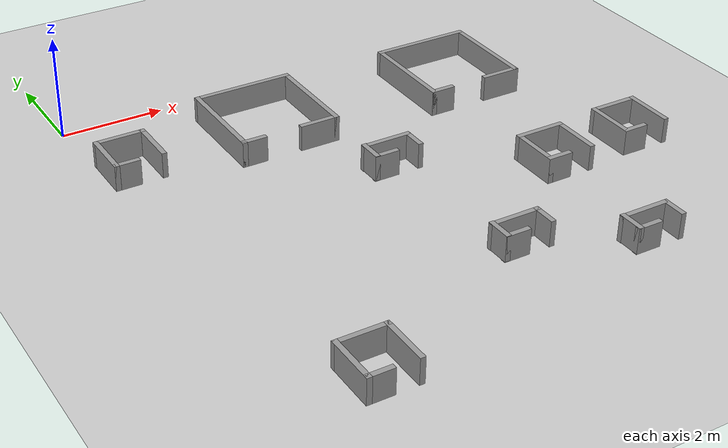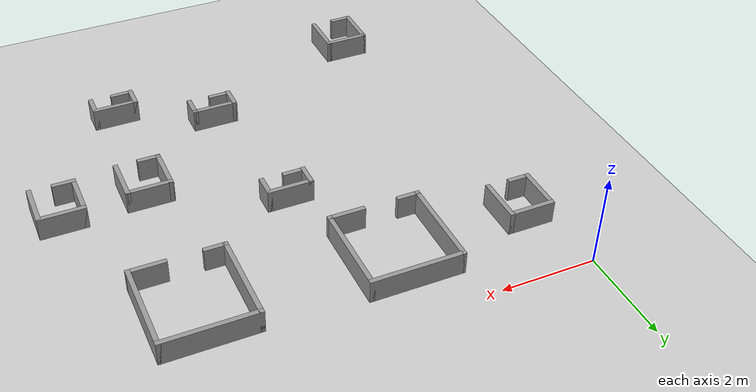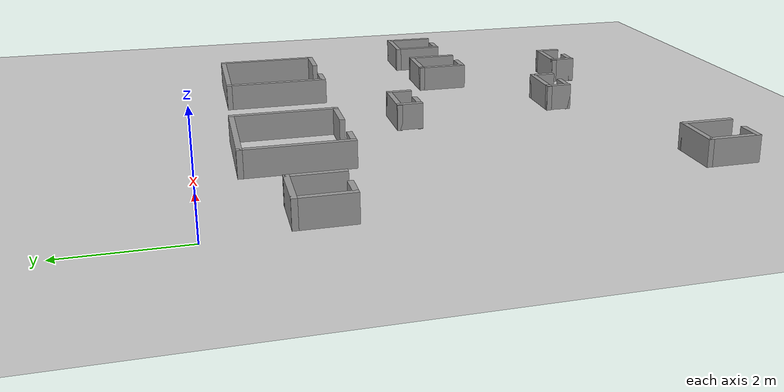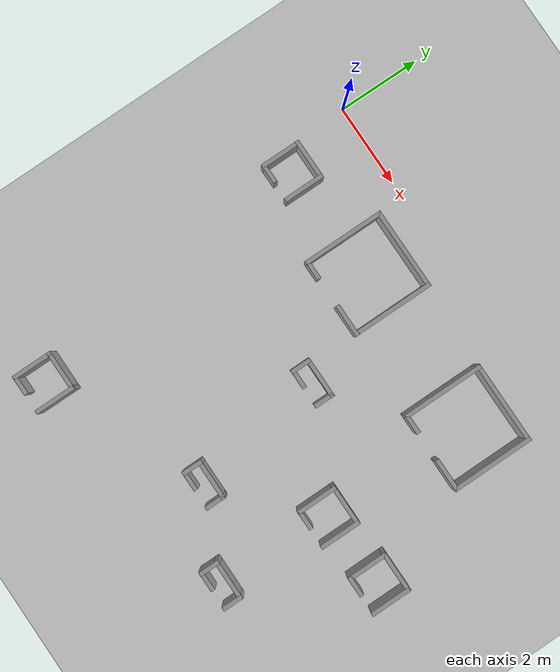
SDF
<sdf version="1.6">
 <world name="default">
  <model name="ground_plane">
   <static>1</static>
   <link name="link">
    <collision name="collision">
     <geometry><plane><normal>0 0 1</normal><size>20 20</size></plane></geometry>
     <surface>
      <contact><collide_bitmask>65535</collide_bitmask></contact>
      <friction><ode><mu>100</mu><mu2>50</mu2></ode></friction>
     </surface>
    </collision>
    <visual name="visual">
     <cast_shadows>0</cast_shadows>
     <geometry><plane><normal>0 0 1</normal><size>20 20</size></plane></geometry>
     <material>
      <script><uri>file://media/materials/scripts/gazebo.material</uri><name>Gazebo/Grey</name></script>
     </material>
    </visual>
   </link>
  </model>
  <model name="shape4">
   <pose>9.1 -5.3 0 0 -0 0</pose>
   <link name="Wall_14">
    <collision name="Wall_14_Collision">
     <geometry><box><size>1 0.1 0.5</size></box></geometry>
     <pose>0 0 0.25 0 -0 0</pose>
    </collision>
    <visual name="Wall_14_Visual">
     <pose>0 0 0.25 0 -0 0</pose>
     <geometry><box><size>1 0.1 0.5</size></box></geometry>
     <material>
      <script><uri>file://media/materials/scripts/gazebo.material</uri><name>Gazebo/Grey</name></script>
      <ambient>1 1 1 1</ambient>
     </material>
     <meta><layer>0</layer></meta>
    </visual>
    <pose>-0 0.45 0 0 -0 0</pose>
   </link>
   <link name="Wall_15">
    <collision name="Wall_15_Collision">
     <geometry><box><size>1 0.1 0.5</size></box></geometry>
     <pose>0 0 0.25 0 -0 0</pose>
    </collision>
    <visual name="Wall_15_Visual">
     <pose>0 0 0.25 0 -0 0</pose>
     <geometry><box><size>1 0.1 0.5</size></box></geometry>
     <material>
      <script><uri>file://media/materials/scripts/gazebo.material</uri><name>Gazebo/Grey</name></script>
      <ambient>1 1 1 1</ambient>
     </material>
     <meta><layer>0</layer></meta>
    </visual>
    <pose>0.45 -0 0 0 -0 -1.5708</pose>
   </link>
   <link name="Wall_17">
    <collision name="Wall_17_Collision">
     <geometry><box><size>1 0.1 0.5</size></box></geometry>
     <pose>0 0 0.25 0 -0 0</pose>
    </collision>
    <visual name="Wall_17_Visual">
     <pose>0 0 0.25 0 -0 0</pose>
     <geometry><box><size>1 0.1 0.5</size></box></geometry>
     <material>
      <script><uri>file://media/materials/scripts/gazebo.material</uri><name>Gazebo/Grey</name></script>
      <ambient>1 1 1 1</ambient>
     </material>
     <meta><layer>0</layer></meta>
    </visual>
    <pose>-0.45 -0 0 0 -0 -1.5708</pose>
   </link>
   <link name="Wall_18">
    <collision name="Wall_18_Collision">
     <geometry><box><size>0.5 0.1 0.5</size></box></geometry>
     <pose>0 0 0.25 0 -0 0</pose>
    </collision>
    <visual name="Wall_18_Visual">
     <pose>0 0 0.25 0 -0 0</pose>
     <geometry><box><size>0.5 0.1 0.5</size></box></geometry>
     <material>
      <script><uri>file://media/materials/scripts/gazebo.material</uri><name>Gazebo/Grey</name></script>
      <ambient>1 1 1 1</ambient>
     </material>
     <meta><layer>0</layer></meta>
    </visual>
    <pose>-0.25 -0.45 0 0 -0 0</pose>
   </link>
   <static>1</static>
  </model>
  <model name="shape0">
   <pose>4.7 -4.05 0 0 -0 0</pose>
   <link name="Wall_0">
    <pose>0 0.2 0 0 -0 0</pose>
    <inertial>
     <mass>1</mass>
     <inertia><ixx>1</ixx><ixy>0</ixy><ixz>0</ixz><iyy>1</iyy><iyz>0</iyz><izz>1</izz></inertia>
    </inertial>
    <visual name="Wall_0_Visual">
     <pose>0 0 0.25 0 -0 0</pose>
     <geometry><box><size>1 0.1 0.5</size></box></geometry>
     <material>
      <script><uri>file://media/materials/scripts/gazebo.material</uri><name>Gazebo/Grey</name></script>
      <ambient>1 1 1 1</ambient>
      <shader type="vertex"><normal_map>__default__</normal_map></shader>
      <diffuse>0.7 0.7 0.7 1</diffuse>
      <specular>0.01 0.01 0.01 1</specular>
      <emissive>0 0 0 1</emissive>
     </material>
     <meta><layer>0</layer></meta>
    </visual>
    <collision name="Wall_0_Collision">
     <pose>0 0 0.25 0 -0 0</pose>
     <geometry><box><size>1 0.1 0.5</size></box></geometry>
     <surface>
      <friction>
       <ode><mu>1</mu><mu2>1</mu2><fdir1>0 0 0</fdir1><slip1>0</slip1><slip2>0</slip2></ode>
       <torsional>
        <coefficient>1</coefficient>
        <patch_radius>0</patch_radius>
        <surface_radius>0</surface_radius>
        <use_patch_radius>1</use_patch_radius>
        <ode><slip>0</slip></ode>
       </torsional>
      </friction>
      <bounce><restitution_coefficient>0</restitution_coefficient><threshold>1e+06</threshold></bounce>
      <contact>
       <collide_without_contact>0</collide_without_contact>
       <collide_without_contact_bitmask>1</collide_without_contact_bitmask>
       <collide_bitmask>1</collide_bitmask>
       <ode>
        <soft_cfm>0</soft_cfm>
        <soft_erp>0.2</soft_erp>
        <kp>1e+13</kp>
        <kd>1</kd>
        <max_vel>0.01</max_vel>
        <min_depth>0</min_depth>
       </ode>
       <bullet>
        <split_impulse>1</split_impulse>
        <split_impulse_penetration_threshold>-0.01</split_impulse_penetration_threshold>
        <soft_cfm>0</soft_cfm>
        <soft_erp>0.2</soft_erp>
        <kp>1e+13</kp>
        <kd>1</kd>
       </bullet>
      </contact>
     </surface>
    </collision>
   </link>
   <link name="Wall_2">
    <pose>-0.45 0 0.01 0 0 -1.5708</pose>
    <inertial>
     <mass>1</mass>
     <inertia><ixx>1</ixx><ixy>0</ixy><ixz>0</ixz><iyy>1</iyy><iyz>0</iyz><izz>1</izz></inertia>
    </inertial>
    <visual name="Wall_2_Visual">
     <pose>0 0 0.25 0 -0 0</pose>
     <geometry><box><size>0.5 0.1 0.5</size></box></geometry>
     <material>
      <script><uri>file://media/materials/scripts/gazebo.material</uri><name>Gazebo/Grey</name></script>
      <ambient>1 1 1 1</ambient>
      <shader type="vertex"><normal_map>__default__</normal_map></shader>
      <diffuse>0.7 0.7 0.7 1</diffuse>
      <specular>0.01 0.01 0.01 1</specular>
      <emissive>0 0 0 1</emissive>
     </material>
     <meta><layer>0</layer></meta>
    </visual>
    <collision name="Wall_2_Collision">
     <pose>0 0 0.25 0 -0 0</pose>
     <geometry><box><size>0.5 0.1 0.5</size></box></geometry>
     <surface>
      <friction>
       <ode><mu>1</mu><mu2>1</mu2><fdir1>0 0 0</fdir1><slip1>0</slip1><slip2>0</slip2></ode>
       <torsional>
        <coefficient>1</coefficient>
        <patch_radius>0</patch_radius>
        <surface_radius>0</surface_radius>
        <use_patch_radius>1</use_patch_radius>
        <ode><slip>0</slip></ode>
       </torsional>
      </friction>
      <bounce><restitution_coefficient>0</restitution_coefficient><threshold>1e+06</threshold></bounce>
      <contact>
       <collide_without_contact>0</collide_without_contact>
       <collide_without_contact_bitmask>1</collide_without_contact_bitmask>
       <collide_bitmask>1</collide_bitmask>
       <ode>
        <soft_cfm>0</soft_cfm>
        <soft_erp>0.2</soft_erp>
        <kp>1e+13</kp>
        <kd>1</kd>
        <max_vel>0.01</max_vel>
        <min_depth>0</min_depth>
       </ode>
       <bullet>
        <split_impulse>1</split_impulse>
        <split_impulse_penetration_threshold>-0.01</split_impulse_penetration_threshold>
        <soft_cfm>0</soft_cfm>
        <soft_erp>0.2</soft_erp>
        <kp>1e+13</kp>
        <kd>1</kd>
       </bullet>
      </contact>
     </surface>
    </collision>
   </link>
   <link name="Wall_4">
    <pose>0.45 0 0 0 0 -1.5708</pose>
    <inertial>
     <mass>1</mass>
     <inertia><ixx>1</ixx><ixy>0</ixy><ixz>0</ixz><iyy>1</iyy><iyz>0</iyz><izz>1</izz></inertia>
    </inertial>
    <visual name="Wall_4_Visual">
     <pose>0 0 0.25 0 -0 0</pose>
     <geometry><box><size>0.5 0.1 0.5</size></box></geometry>
     <material>
      <script><uri>file://media/materials/scripts/gazebo.material</uri><name>Gazebo/Grey</name></script>
      <ambient>1 1 1 1</ambient>
      <shader type="vertex"><normal_map>__default__</normal_map></shader>
      <diffuse>0.7 0.7 0.7 1</diffuse>
      <specular>0.01 0.01 0.01 1</specular>
      <emissive>0 0 0 1</emissive>
     </material>
     <meta><layer>0</layer></meta>
    </visual>
    <collision name="Wall_4_Collision">
     <pose>0 0 0.25 0 -0 0</pose>
     <geometry><box><size>0.5 0.1 0.5</size></box></geometry>
     <surface>
      <friction>
       <ode><mu>1</mu><mu2>1</mu2><fdir1>0 0 0</fdir1><slip1>0</slip1><slip2>0</slip2></ode>
       <torsional>
        <coefficient>1</coefficient>
        <patch_radius>0</patch_radius>
        <surface_radius>0</surface_radius>
        <use_patch_radius>1</use_patch_radius>
        <ode><slip>0</slip></ode>
       </torsional>
      </friction>
      <bounce><restitution_coefficient>0</restitution_coefficient><threshold>1e+06</threshold></bounce>
      <contact>
       <collide_without_contact>0</collide_without_contact>
       <collide_without_contact_bitmask>1</collide_without_contact_bitmask>
       <collide_bitmask>1</collide_bitmask>
       <ode>
        <soft_cfm>0</soft_cfm>
        <soft_erp>0.2</soft_erp>
        <kp>1e+13</kp>
        <kd>1</kd>
        <max_vel>0.01</max_vel>
        <min_depth>0</min_depth>
       </ode>
       <bullet>
        <split_impulse>1</split_impulse>
        <split_impulse_penetration_threshold>-0.01</split_impulse_penetration_threshold>
        <soft_cfm>0</soft_cfm>
        <soft_erp>0.2</soft_erp>
        <kp>1e+13</kp>
        <kd>1</kd>
       </bullet>
      </contact>
     </surface>
    </collision>
   </link>
   <link name="Wall_7">
    <pose>-0.25 -0.2 0 0 -0 0</pose>
    <inertial>
     <mass>1</mass>
     <inertia><ixx>1</ixx><ixy>0</ixy><ixz>0</ixz><iyy>1</iyy><iyz>0</iyz><izz>1</izz></inertia>
    </inertial>
    <visual name="Wall_7_Visual">
     <pose>0 0 0.25 0 -0 0</pose>
     <geometry><box><size>0.5 0.1 0.5</size></box></geometry>
     <material>
      <script><uri>file://media/materials/scripts/gazebo.material</uri><name>Gazebo/Grey</name></script>
      <ambient>1 1 1 1</ambient>
      <shader type="vertex"><normal_map>__default__</normal_map></shader>
      <diffuse>0.7 0.7 0.7 1</diffuse>
      <specular>0.01 0.01 0.01 1</specular>
      <emissive>0 0 0 1</emissive>
     </material>
     <meta><layer>0</layer></meta>
    </visual>
    <collision name="Wall_7_Collision">
     <pose>0 0 0.25 0 -0 0</pose>
     <geometry><box><size>0.5 0.1 0.5</size></box></geometry>
     <surface>
      <friction>
       <ode><mu>1</mu><mu2>1</mu2><fdir1>0 0 0</fdir1><slip1>0</slip1><slip2>0</slip2></ode>
       <torsional>
        <coefficient>1</coefficient>
        <patch_radius>0</patch_radius>
        <surface_radius>0</surface_radius>
        <use_patch_radius>1</use_patch_radius>
        <ode><slip>0</slip></ode>
       </torsional>
      </friction>
      <bounce><restitution_coefficient>0</restitution_coefficient><threshold>1e+06</threshold></bounce>
      <contact>
       <collide_without_contact>0</collide_without_contact>
       <collide_without_contact_bitmask>1</collide_without_contact_bitmask>
       <collide_bitmask>1</collide_bitmask>
       <ode>
        <soft_cfm>0</soft_cfm>
        <soft_erp>0.2</soft_erp>
        <kp>1e+13</kp>
        <kd>1</kd>
        <max_vel>0.01</max_vel>
        <min_depth>0</min_depth>
       </ode>
       <bullet>
        <split_impulse>1</split_impulse>
        <split_impulse_penetration_threshold>-0.01</split_impulse_penetration_threshold>
        <soft_cfm>0</soft_cfm>
        <soft_erp>0.2</soft_erp>
        <kp>1e+13</kp>
        <kd>1</kd>
       </bullet>
      </contact>
     </surface>
    </collision>
   </link>
   <static>1</static>
  </model>
  <model name="shape0">
   <pose>7.2 -8.15 0 0 -0 0</pose>
   <link name="Wall_0">
    <pose>0 0.2 0 0 -0 0</pose>
    <inertial>
     <mass>1</mass>
     <inertia><ixx>1</ixx><ixy>0</ixy><ixz>0</ixz><iyy>1</iyy><iyz>0</iyz><izz>1</izz></inertia>
    </inertial>
    <visual name="Wall_0_Visual">
     <pose>0 0 0.25 0 -0 0</pose>
     <geometry><box><size>1 0.1 0.5</size></box></geometry>
     <material>
      <script><uri>file://media/materials/scripts/gazebo.material</uri><name>Gazebo/Grey</name></script>
      <ambient>1 1 1 1</ambient>
      <shader type="vertex"><normal_map>__default__</normal_map></shader>
      <diffuse>0.7 0.7 0.7 1</diffuse>
      <specular>0.01 0.01 0.01 1</specular>
      <emissive>0 0 0 1</emissive>
     </material>
     <meta><layer>0</layer></meta>
    </visual>
    <collision name="Wall_0_Collision">
     <pose>0 0 0.25 0 -0 0</pose>
     <geometry><box><size>1 0.1 0.5</size></box></geometry>
     <surface>
      <friction>
       <ode><mu>1</mu><mu2>1</mu2><fdir1>0 0 0</fdir1><slip1>0</slip1><slip2>0</slip2></ode>
       <torsional>
        <coefficient>1</coefficient>
        <patch_radius>0</patch_radius>
        <surface_radius>0</surface_radius>
        <use_patch_radius>1</use_patch_radius>
        <ode><slip>0</slip></ode>
       </torsional>
      </friction>
      <bounce><restitution_coefficient>0</restitution_coefficient><threshold>1e+06</threshold></bounce>
      <contact>
       <collide_without_contact>0</collide_without_contact>
       <collide_without_contact_bitmask>1</collide_without_contact_bitmask>
       <collide_bitmask>1</collide_bitmask>
       <ode>
        <soft_cfm>0</soft_cfm>
        <soft_erp>0.2</soft_erp>
        <kp>1e+13</kp>
        <kd>1</kd>
        <max_vel>0.01</max_vel>
        <min_depth>0</min_depth>
       </ode>
       <bullet>
        <split_impulse>1</split_impulse>
        <split_impulse_penetration_threshold>-0.01</split_impulse_penetration_threshold>
        <soft_cfm>0</soft_cfm>
        <soft_erp>0.2</soft_erp>
        <kp>1e+13</kp>
        <kd>1</kd>
       </bullet>
      </contact>
     </surface>
    </collision>
   </link>
   <link name="Wall_2">
    <pose>-0.45 0 0.01 0 0 -1.5708</pose>
    <inertial>
     <mass>1</mass>
     <inertia><ixx>1</ixx><ixy>0</ixy><ixz>0</ixz><iyy>1</iyy><iyz>0</iyz><izz>1</izz></inertia>
    </inertial>
    <visual name="Wall_2_Visual">
     <pose>0 0 0.25 0 -0 0</pose>
     <geometry><box><size>0.5 0.1 0.5</size></box></geometry>
     <material>
      <script><uri>file://media/materials/scripts/gazebo.material</uri><name>Gazebo/Grey</name></script>
      <ambient>1 1 1 1</ambient>
      <shader type="vertex"><normal_map>__default__</normal_map></shader>
      <diffuse>0.7 0.7 0.7 1</diffuse>
      <specular>0.01 0.01 0.01 1</specular>
      <emissive>0 0 0 1</emissive>
     </material>
     <meta><layer>0</layer></meta>
    </visual>
    <collision name="Wall_2_Collision">
     <pose>0 0 0.25 0 -0 0</pose>
     <geometry><box><size>0.5 0.1 0.5</size></box></geometry>
     <surface>
      <friction>
       <ode><mu>1</mu><mu2>1</mu2><fdir1>0 0 0</fdir1><slip1>0</slip1><slip2>0</slip2></ode>
       <torsional>
        <coefficient>1</coefficient>
        <patch_radius>0</patch_radius>
        <surface_radius>0</surface_radius>
        <use_patch_radius>1</use_patch_radius>
        <ode><slip>0</slip></ode>
       </torsional>
      </friction>
      <bounce><restitution_coefficient>0</restitution_coefficient><threshold>1e+06</threshold></bounce>
      <contact>
       <collide_without_contact>0</collide_without_contact>
       <collide_without_contact_bitmask>1</collide_without_contact_bitmask>
       <collide_bitmask>1</collide_bitmask>
       <ode>
        <soft_cfm>0</soft_cfm>
        <soft_erp>0.2</soft_erp>
        <kp>1e+13</kp>
        <kd>1</kd>
        <max_vel>0.01</max_vel>
        <min_depth>0</min_depth>
       </ode>
       <bullet>
        <split_impulse>1</split_impulse>
        <split_impulse_penetration_threshold>-0.01</split_impulse_penetration_threshold>
        <soft_cfm>0</soft_cfm>
        <soft_erp>0.2</soft_erp>
        <kp>1e+13</kp>
        <kd>1</kd>
       </bullet>
      </contact>
     </surface>
    </collision>
   </link>
   <link name="Wall_4">
    <pose>0.45 0 0 0 0 -1.5708</pose>
    <inertial>
     <mass>1</mass>
     <inertia><ixx>1</ixx><ixy>0</ixy><ixz>0</ixz><iyy>1</iyy><iyz>0</iyz><izz>1</izz></inertia>
    </inertial>
    <visual name="Wall_4_Visual">
     <pose>0 0 0.25 0 -0 0</pose>
     <geometry><box><size>0.5 0.1 0.5</size></box></geometry>
     <material>
      <script><uri>file://media/materials/scripts/gazebo.material</uri><name>Gazebo/Grey</name></script>
      <ambient>1 1 1 1</ambient>
      <shader type="vertex"><normal_map>__default__</normal_map></shader>
      <diffuse>0.7 0.7 0.7 1</diffuse>
      <specular>0.01 0.01 0.01 1</specular>
      <emissive>0 0 0 1</emissive>
     </material>
     <meta><layer>0</layer></meta>
    </visual>
    <collision name="Wall_4_Collision">
     <pose>0 0 0.25 0 -0 0</pose>
     <geometry><box><size>0.5 0.1 0.5</size></box></geometry>
     <surface>
      <friction>
       <ode><mu>1</mu><mu2>1</mu2><fdir1>0 0 0</fdir1><slip1>0</slip1><slip2>0</slip2></ode>
       <torsional>
        <coefficient>1</coefficient>
        <patch_radius>0</patch_radius>
        <surface_radius>0</surface_radius>
        <use_patch_radius>1</use_patch_radius>
        <ode><slip>0</slip></ode>
       </torsional>
      </friction>
      <bounce><restitution_coefficient>0</restitution_coefficient><threshold>1e+06</threshold></bounce>
      <contact>
       <collide_without_contact>0</collide_without_contact>
       <collide_without_contact_bitmask>1</collide_without_contact_bitmask>
       <collide_bitmask>1</collide_bitmask>
       <ode>
        <soft_cfm>0</soft_cfm>
        <soft_erp>0.2</soft_erp>
        <kp>1e+13</kp>
        <kd>1</kd>
        <max_vel>0.01</max_vel>
        <min_depth>0</min_depth>
       </ode>
       <bullet>
        <split_impulse>1</split_impulse>
        <split_impulse_penetration_threshold>-0.01</split_impulse_penetration_threshold>
        <soft_cfm>0</soft_cfm>
        <soft_erp>0.2</soft_erp>
        <kp>1e+13</kp>
        <kd>1</kd>
       </bullet>
      </contact>
     </surface>
    </collision>
   </link>
   <link name="Wall_7">
    <pose>-0.25 -0.2 0 0 -0 0</pose>
    <inertial>
     <mass>1</mass>
     <inertia><ixx>1</ixx><ixy>0</ixy><ixz>0</ixz><iyy>1</iyy><iyz>0</iyz><izz>1</izz></inertia>
    </inertial>
    <visual name="Wall_7_Visual">
     <pose>0 0 0.25 0 -0 0</pose>
     <geometry><box><size>0.5 0.1 0.5</size></box></geometry>
     <material>
      <script><uri>file://media/materials/scripts/gazebo.material</uri><name>Gazebo/Grey</name></script>
      <ambient>1 1 1 1</ambient>
      <shader type="vertex"><normal_map>__default__</normal_map></shader>
      <diffuse>0.7 0.7 0.7 1</diffuse>
      <specular>0.01 0.01 0.01 1</specular>
      <emissive>0 0 0 1</emissive>
     </material>
     <meta><layer>0</layer></meta>
    </visual>
    <collision name="Wall_7_Collision">
     <pose>0 0 0.25 0 -0 0</pose>
     <geometry><box><size>0.5 0.1 0.5</size></box></geometry>
     <surface>
      <friction>
       <ode><mu>1</mu><mu2>1</mu2><fdir1>0 0 0</fdir1><slip1>0</slip1><slip2>0</slip2></ode>
       <torsional>
        <coefficient>1</coefficient>
        <patch_radius>0</patch_radius>
        <surface_radius>0</surface_radius>
        <use_patch_radius>1</use_patch_radius>
        <ode><slip>0</slip></ode>
       </torsional>
      </friction>
      <bounce><restitution_coefficient>0</restitution_coefficient><threshold>1e+06</threshold></bounce>
      <contact>
       <collide_without_contact>0</collide_without_contact>
       <collide_without_contact_bitmask>1</collide_without_contact_bitmask>
       <collide_bitmask>1</collide_bitmask>
       <ode>
        <soft_cfm>0</soft_cfm>
        <soft_erp>0.2</soft_erp>
        <kp>1e+13</kp>
        <kd>1</kd>
        <max_vel>0.01</max_vel>
        <min_depth>0</min_depth>
       </ode>
       <bullet>
        <split_impulse>1</split_impulse>
        <split_impulse_penetration_threshold>-0.01</split_impulse_penetration_threshold>
        <soft_cfm>0</soft_cfm>
        <soft_erp>0.2</soft_erp>
        <kp>1e+13</kp>
        <kd>1</kd>
       </bullet>
      </contact>
     </surface>
    </collision>
   </link>
   <static>1</static>
  </model>
  <model name="shape5">
   <pose>7.4 -1.8 0 0 -0 0</pose>
   <link name="Wall_20">
    <collision name="Wall_20_Collision">
     <geometry><box><size>2 0.1 0.5</size></box></geometry>
     <pose>0 0 0.25 0 -0 0</pose>
    </collision>
    <visual name="Wall_20_Visual">
     <pose>0 0 0.25 0 -0 0</pose>
     <geometry><box><size>2 0.1 0.5</size></box></geometry>
     <material>
      <script><uri>file://media/materials/scripts/gazebo.material</uri><name>Gazebo/Grey</name></script>
      <ambient>1 1 1 1</ambient>
     </material>
     <meta><layer>0</layer></meta>
    </visual>
    <pose>-0 0.95 0 0 -0 0</pose>
   </link>
   <link name="Wall_21">
    <collision name="Wall_21_Collision">
     <geometry><box><size>2 0.1 0.5</size></box></geometry>
     <pose>0 0 0.25 0 -0 0</pose>
    </collision>
    <visual name="Wall_21_Visual">
     <pose>0 0 0.25 0 -0 0</pose>
     <geometry><box><size>2 0.1 0.5</size></box></geometry>
     <material>
      <script><uri>file://media/materials/scripts/gazebo.material</uri><name>Gazebo/Grey</name></script>
      <ambient>1 1 1 1</ambient>
     </material>
     <meta><layer>0</layer></meta>
    </visual>
    <pose>0.95 0 0 0 -0 -1.5708</pose>
   </link>
   <link name="Wall_22">
    <collision name="Wall_22_Collision">
     <geometry><box><size>0.8 0.1 0.5</size></box></geometry>
     <pose>0 0 0.25 0 -0 0</pose>
    </collision>
    <visual name="Wall_22_Visual">
     <pose>0 0 0.25 0 -0 0</pose>
     <geometry><box><size>0.8 0.1 0.5</size></box></geometry>
     <material>
      <script><uri>file://media/materials/scripts/gazebo.material</uri><name>Gazebo/Grey</name></script>
      <ambient>1 1 1 1</ambient>
     </material>
     <meta><layer>0</layer></meta>
    </visual>
    <pose>0.6 -0.95 0 0 -0 3.14159</pose>
   </link>
   <link name="Wall_24">
    <collision name="Wall_24_Collision">
     <geometry><box><size>2 0.1 0.5</size></box></geometry>
     <pose>0 0 0.25 0 -0 0</pose>
    </collision>
    <visual name="Wall_24_Visual">
     <pose>0 0 0.25 0 -0 0</pose>
     <geometry><box><size>2 0.1 0.5</size></box></geometry>
     <material>
      <script><uri>file://media/materials/scripts/gazebo.material</uri><name>Gazebo/Grey</name></script>
      <ambient>1 1 1 1</ambient>
     </material>
     <meta><layer>0</layer></meta>
    </visual>
    <pose>-0.95 0 0 0 -0 -1.5708</pose>
   </link>
   <link name="Wall_25">
    <collision name="Wall_25_Collision">
     <geometry><box><size>0.5 0.1 0.5</size></box></geometry>
     <pose>0 0 0.25 0 -0 0</pose>
    </collision>
    <visual name="Wall_25_Visual">
     <pose>0 0 0.25 0 -0 0</pose>
     <geometry><box><size>0.5 0.1 0.5</size></box></geometry>
     <material>
      <script><uri>file://media/materials/scripts/gazebo.material</uri><name>Gazebo/Grey</name></script>
      <ambient>1 1 1 1</ambient>
     </material>
     <meta><layer>0</layer></meta>
    </visual>
    <pose>-0.75 -0.95 0 0 -0 0</pose>
   </link>
   <static>1</static>
  </model>
  <model name="shape4">
   <pose>0.6 -1.8 0 0 -0 0</pose>
   <link name="Wall_14">
    <collision name="Wall_14_Collision">
     <geometry><box><size>1 0.1 0.5</size></box></geometry>
     <pose>0 0 0.25 0 -0 0</pose>
    </collision>
    <visual name="Wall_14_Visual">
     <pose>0 0 0.25 0 -0 0</pose>
     <geometry><box><size>1 0.1 0.5</size></box></geometry>
     <material>
      <script><uri>file://media/materials/scripts/gazebo.material</uri><name>Gazebo/Grey</name></script>
      <ambient>1 1 1 1</ambient>
     </material>
     <meta><layer>0</layer></meta>
    </visual>
    <pose>-0 0.45 0 0 -0 0</pose>
   </link>
   <link name="Wall_15">
    <collision name="Wall_15_Collision">
     <geometry><box><size>1 0.1 0.5</size></box></geometry>
     <pose>0 0 0.25 0 -0 0</pose>
    </collision>
    <visual name="Wall_15_Visual">
     <pose>0 0 0.25 0 -0 0</pose>
     <geometry><box><size>1 0.1 0.5</size></box></geometry>
     <material>
      <script><uri>file://media/materials/scripts/gazebo.material</uri><name>Gazebo/Grey</name></script>
      <ambient>1 1 1 1</ambient>
     </material>
     <meta><layer>0</layer></meta>
    </visual>
    <pose>0.45 -0 0 0 -0 -1.5708</pose>
   </link>
   <link name="Wall_17">
    <collision name="Wall_17_Collision">
     <geometry><box><size>1 0.1 0.5</size></box></geometry>
     <pose>0 0 0.25 0 -0 0</pose>
    </collision>
    <visual name="Wall_17_Visual">
     <pose>0 0 0.25 0 -0 0</pose>
     <geometry><box><size>1 0.1 0.5</size></box></geometry>
     <material>
      <script><uri>file://media/materials/scripts/gazebo.material</uri><name>Gazebo/Grey</name></script>
      <ambient>1 1 1 1</ambient>
     </material>
     <meta><layer>0</layer></meta>
    </visual>
    <pose>-0.45 -0 0 0 -0 -1.5708</pose>
   </link>
   <link name="Wall_18">
    <collision name="Wall_18_Collision">
     <geometry><box><size>0.5 0.1 0.5</size></box></geometry>
     <pose>0 0 0.25 0 -0 0</pose>
    </collision>
    <visual name="Wall_18_Visual">
     <pose>0 0 0.25 0 -0 0</pose>
     <geometry><box><size>0.5 0.1 0.5</size></box></geometry>
     <material>
      <script><uri>file://media/materials/scripts/gazebo.material</uri><name>Gazebo/Grey</name></script>
      <ambient>1 1 1 1</ambient>
     </material>
     <meta><layer>0</layer></meta>
    </visual>
    <pose>-0.25 -0.45 0 0 -0 0</pose>
   </link>
   <static>1</static>
  </model>
  <model name="shape5">
   <pose>3.4 -1.7 0 0 -0 0</pose>
   <link name="Wall_20">
    <collision name="Wall_20_Collision">
     <geometry><box><size>2 0.1 0.5</size></box></geometry>
     <pose>0 0 0.25 0 -0 0</pose>
    </collision>
    <visual name="Wall_20_Visual">
     <pose>0 0 0.25 0 -0 0</pose>
     <geometry><box><size>2 0.1 0.5</size></box></geometry>
     <material>
      <script><uri>file://media/materials/scripts/gazebo.material</uri><name>Gazebo/Grey</name></script>
      <ambient>1 1 1 1</ambient>
     </material>
     <meta><layer>0</layer></meta>
    </visual>
    <pose>-0 0.95 0 0 -0 0</pose>
   </link>
   <link name="Wall_21">
    <collision name="Wall_21_Collision">
     <geometry><box><size>2 0.1 0.5</size></box></geometry>
     <pose>0 0 0.25 0 -0 0</pose>
    </collision>
    <visual name="Wall_21_Visual">
     <pose>0 0 0.25 0 -0 0</pose>
     <geometry><box><size>2 0.1 0.5</size></box></geometry>
     <material>
      <script><uri>file://media/materials/scripts/gazebo.material</uri><name>Gazebo/Grey</name></script>
      <ambient>1 1 1 1</ambient>
     </material>
     <meta><layer>0</layer></meta>
    </visual>
    <pose>0.95 0 0 0 -0 -1.5708</pose>
   </link>
   <link name="Wall_22">
    <collision name="Wall_22_Collision">
     <geometry><box><size>0.8 0.1 0.5</size></box></geometry>
     <pose>0 0 0.25 0 -0 0</pose>
    </collision>
    <visual name="Wall_22_Visual">
     <pose>0 0 0.25 0 -0 0</pose>
     <geometry><box><size>0.8 0.1 0.5</size></box></geometry>
     <material>
      <script><uri>file://media/materials/scripts/gazebo.material</uri><name>Gazebo/Grey</name></script>
      <ambient>1 1 1 1</ambient>
     </material>
     <meta><layer>0</layer></meta>
    </visual>
    <pose>0.6 -0.95 0 0 -0 3.14159</pose>
   </link>
   <link name="Wall_24">
    <collision name="Wall_24_Collision">
     <geometry><box><size>2 0.1 0.5</size></box></geometry>
     <pose>0 0 0.25 0 -0 0</pose>
    </collision>
    <visual name="Wall_24_Visual">
     <pose>0 0 0.25 0 -0 0</pose>
     <geometry><box><size>2 0.1 0.5</size></box></geometry>
     <material>
      <script><uri>file://media/materials/scripts/gazebo.material</uri><name>Gazebo/Grey</name></script>
      <ambient>1 1 1 1</ambient>
     </material>
     <meta><layer>0</layer></meta>
    </visual>
    <pose>-0.95 0 0 0 -0 -1.5708</pose>
   </link>
   <link name="Wall_25">
    <collision name="Wall_25_Collision">
     <geometry><box><size>0.5 0.1 0.5</size></box></geometry>
     <pose>0 0 0.25 0 -0 0</pose>
    </collision>
    <visual name="Wall_25_Visual">
     <pose>0 0 0.25 0 -0 0</pose>
     <geometry><box><size>0.5 0.1 0.5</size></box></geometry>
     <material>
      <script><uri>file://media/materials/scripts/gazebo.material</uri><name>Gazebo/Grey</name></script>
      <ambient>1 1 1 1</ambient>
     </material>
     <meta><layer>0</layer></meta>
    </visual>
    <pose>-0.75 -0.95 0 0 -0 0</pose>
   </link>
   <static>1</static>
  </model>
  <model name="shape0">
   <pose>5.2 -7.25 0 0 -0 0</pose>
   <link name="Wall_0">
    <pose>0 0.2 0 0 -0 0</pose>
    <inertial>
     <mass>1</mass>
     <inertia><ixx>1</ixx><ixy>0</ixy><ixz>0</ixz><iyy>1</iyy><iyz>0</iyz><izz>1</izz></inertia>
    </inertial>
    <visual name="Wall_0_Visual">
     <pose>0 0 0.25 0 -0 0</pose>
     <geometry><box><size>1 0.1 0.5</size></box></geometry>
     <material>
      <script><uri>file://media/materials/scripts/gazebo.material</uri><name>Gazebo/Grey</name></script>
      <ambient>1 1 1 1</ambient>
      <shader type="vertex"><normal_map>__default__</normal_map></shader>
      <diffuse>0.7 0.7 0.7 1</diffuse>
      <specular>0.01 0.01 0.01 1</specular>
      <emissive>0 0 0 1</emissive>
     </material>
     <meta><layer>0</layer></meta>
    </visual>
    <collision name="Wall_0_Collision">
     <pose>0 0 0.25 0 -0 0</pose>
     <geometry><box><size>1 0.1 0.5</size></box></geometry>
     <surface>
      <friction>
       <ode><mu>1</mu><mu2>1</mu2><fdir1>0 0 0</fdir1><slip1>0</slip1><slip2>0</slip2></ode>
       <torsional>
        <coefficient>1</coefficient>
        <patch_radius>0</patch_radius>
        <surface_radius>0</surface_radius>
        <use_patch_radius>1</use_patch_radius>
        <ode><slip>0</slip></ode>
       </torsional>
      </friction>
      <bounce><restitution_coefficient>0</restitution_coefficient><threshold>1e+06</threshold></bounce>
      <contact>
       <collide_without_contact>0</collide_without_contact>
       <collide_without_contact_bitmask>1</collide_without_contact_bitmask>
       <collide_bitmask>1</collide_bitmask>
       <ode>
        <soft_cfm>0</soft_cfm>
        <soft_erp>0.2</soft_erp>
        <kp>1e+13</kp>
        <kd>1</kd>
        <max_vel>0.01</max_vel>
        <min_depth>0</min_depth>
       </ode>
       <bullet>
        <split_impulse>1</split_impulse>
        <split_impulse_penetration_threshold>-0.01</split_impulse_penetration_threshold>
        <soft_cfm>0</soft_cfm>
        <soft_erp>0.2</soft_erp>
        <kp>1e+13</kp>
        <kd>1</kd>
       </bullet>
      </contact>
     </surface>
    </collision>
   </link>
   <link name="Wall_2">
    <pose>-0.45 0 0.01 0 0 -1.5708</pose>
    <inertial>
     <mass>1</mass>
     <inertia><ixx>1</ixx><ixy>0</ixy><ixz>0</ixz><iyy>1</iyy><iyz>0</iyz><izz>1</izz></inertia>
    </inertial>
    <visual name="Wall_2_Visual">
     <pose>0 0 0.25 0 -0 0</pose>
     <geometry><box><size>0.5 0.1 0.5</size></box></geometry>
     <material>
      <script><uri>file://media/materials/scripts/gazebo.material</uri><name>Gazebo/Grey</name></script>
      <ambient>1 1 1 1</ambient>
      <shader type="vertex"><normal_map>__default__</normal_map></shader>
      <diffuse>0.7 0.7 0.7 1</diffuse>
      <specular>0.01 0.01 0.01 1</specular>
      <emissive>0 0 0 1</emissive>
     </material>
     <meta><layer>0</layer></meta>
    </visual>
    <collision name="Wall_2_Collision">
     <pose>0 0 0.25 0 -0 0</pose>
     <geometry><box><size>0.5 0.1 0.5</size></box></geometry>
     <surface>
      <friction>
       <ode><mu>1</mu><mu2>1</mu2><fdir1>0 0 0</fdir1><slip1>0</slip1><slip2>0</slip2></ode>
       <torsional>
        <coefficient>1</coefficient>
        <patch_radius>0</patch_radius>
        <surface_radius>0</surface_radius>
        <use_patch_radius>1</use_patch_radius>
        <ode><slip>0</slip></ode>
       </torsional>
      </friction>
      <bounce><restitution_coefficient>0</restitution_coefficient><threshold>1e+06</threshold></bounce>
      <contact>
       <collide_without_contact>0</collide_without_contact>
       <collide_without_contact_bitmask>1</collide_without_contact_bitmask>
       <collide_bitmask>1</collide_bitmask>
       <ode>
        <soft_cfm>0</soft_cfm>
        <soft_erp>0.2</soft_erp>
        <kp>1e+13</kp>
        <kd>1</kd>
        <max_vel>0.01</max_vel>
        <min_depth>0</min_depth>
       </ode>
       <bullet>
        <split_impulse>1</split_impulse>
        <split_impulse_penetration_threshold>-0.01</split_impulse_penetration_threshold>
        <soft_cfm>0</soft_cfm>
        <soft_erp>0.2</soft_erp>
        <kp>1e+13</kp>
        <kd>1</kd>
       </bullet>
      </contact>
     </surface>
    </collision>
   </link>
   <link name="Wall_4">
    <pose>0.45 0 0 0 0 -1.5708</pose>
    <inertial>
     <mass>1</mass>
     <inertia><ixx>1</ixx><ixy>0</ixy><ixz>0</ixz><iyy>1</iyy><iyz>0</iyz><izz>1</izz></inertia>
    </inertial>
    <visual name="Wall_4_Visual">
     <pose>0 0 0.25 0 -0 0</pose>
     <geometry><box><size>0.5 0.1 0.5</size></box></geometry>
     <material>
      <script><uri>file://media/materials/scripts/gazebo.material</uri><name>Gazebo/Grey</name></script>
      <ambient>1 1 1 1</ambient>
      <shader type="vertex"><normal_map>__default__</normal_map></shader>
      <diffuse>0.7 0.7 0.7 1</diffuse>
      <specular>0.01 0.01 0.01 1</specular>
      <emissive>0 0 0 1</emissive>
     </material>
     <meta><layer>0</layer></meta>
    </visual>
    <collision name="Wall_4_Collision">
     <pose>0 0 0.25 0 -0 0</pose>
     <geometry><box><size>0.5 0.1 0.5</size></box></geometry>
     <surface>
      <friction>
       <ode><mu>1</mu><mu2>1</mu2><fdir1>0 0 0</fdir1><slip1>0</slip1><slip2>0</slip2></ode>
       <torsional>
        <coefficient>1</coefficient>
        <patch_radius>0</patch_radius>
        <surface_radius>0</surface_radius>
        <use_patch_radius>1</use_patch_radius>
        <ode><slip>0</slip></ode>
       </torsional>
      </friction>
      <bounce><restitution_coefficient>0</restitution_coefficient><threshold>1e+06</threshold></bounce>
      <contact>
       <collide_without_contact>0</collide_without_contact>
       <collide_without_contact_bitmask>1</collide_without_contact_bitmask>
       <collide_bitmask>1</collide_bitmask>
       <ode>
        <soft_cfm>0</soft_cfm>
        <soft_erp>0.2</soft_erp>
        <kp>1e+13</kp>
        <kd>1</kd>
        <max_vel>0.01</max_vel>
        <min_depth>0</min_depth>
       </ode>
       <bullet>
        <split_impulse>1</split_impulse>
        <split_impulse_penetration_threshold>-0.01</split_impulse_penetration_threshold>
        <soft_cfm>0</soft_cfm>
        <soft_erp>0.2</soft_erp>
        <kp>1e+13</kp>
        <kd>1</kd>
       </bullet>
      </contact>
     </surface>
    </collision>
   </link>
   <link name="Wall_7">
    <pose>-0.25 -0.2 0 0 -0 0</pose>
    <inertial>
     <mass>1</mass>
     <inertia><ixx>1</ixx><ixy>0</ixy><ixz>0</ixz><iyy>1</iyy><iyz>0</iyz><izz>1</izz></inertia>
    </inertial>
    <visual name="Wall_7_Visual">
     <pose>0 0 0.25 0 -0 0</pose>
     <geometry><box><size>0.5 0.1 0.5</size></box></geometry>
     <material>
      <script><uri>file://media/materials/scripts/gazebo.material</uri><name>Gazebo/Grey</name></script>
      <ambient>1 1 1 1</ambient>
      <shader type="vertex"><normal_map>__default__</normal_map></shader>
      <diffuse>0.7 0.7 0.7 1</diffuse>
      <specular>0.01 0.01 0.01 1</specular>
      <emissive>0 0 0 1</emissive>
     </material>
     <meta><layer>0</layer></meta>
    </visual>
    <collision name="Wall_7_Collision">
     <pose>0 0 0.25 0 -0 0</pose>
     <geometry><box><size>0.5 0.1 0.5</size></box></geometry>
     <surface>
      <friction>
       <ode><mu>1</mu><mu2>1</mu2><fdir1>0 0 0</fdir1><slip1>0</slip1><slip2>0</slip2></ode>
       <torsional>
        <coefficient>1</coefficient>
        <patch_radius>0</patch_radius>
        <surface_radius>0</surface_radius>
        <use_patch_radius>1</use_patch_radius>
        <ode><slip>0</slip></ode>
       </torsional>
      </friction>
      <bounce><restitution_coefficient>0</restitution_coefficient><threshold>1e+06</threshold></bounce>
      <contact>
       <collide_without_contact>0</collide_without_contact>
       <collide_without_contact_bitmask>1</collide_without_contact_bitmask>
       <collide_bitmask>1</collide_bitmask>
       <ode>
        <soft_cfm>0</soft_cfm>
        <soft_erp>0.2</soft_erp>
        <kp>1e+13</kp>
        <kd>1</kd>
        <max_vel>0.01</max_vel>
        <min_depth>0</min_depth>
       </ode>
       <bullet>
        <split_impulse>1</split_impulse>
        <split_impulse_penetration_threshold>-0.01</split_impulse_penetration_threshold>
        <soft_cfm>0</soft_cfm>
        <soft_erp>0.2</soft_erp>
        <kp>1e+13</kp>
        <kd>1</kd>
       </bullet>
      </contact>
     </surface>
    </collision>
   </link>
   <static>1</static>
  </model>
  <model name="shape4">
   <pose>1.4 -8.9 0 0 -0 0</pose>
   <link name="Wall_14">
    <collision name="Wall_14_Collision">
     <geometry><box><size>1 0.1 0.5</size></box></geometry>
     <pose>0 0 0.25 0 -0 0</pose>
    </collision>
    <visual name="Wall_14_Visual">
     <pose>0 0 0.25 0 -0 0</pose>
     <geometry><box><size>1 0.1 0.5</size></box></geometry>
     <material>
      <script><uri>file://media/materials/scripts/gazebo.material</uri><name>Gazebo/Grey</name></script>
      <ambient>1 1 1 1</ambient>
     </material>
     <meta><layer>0</layer></meta>
    </visual>
    <pose>-0 0.45 0 0 -0 0</pose>
   </link>
   <link name="Wall_15">
    <collision name="Wall_15_Collision">
     <geometry><box><size>1 0.1 0.5</size></box></geometry>
     <pose>0 0 0.25 0 -0 0</pose>
    </collision>
    <visual name="Wall_15_Visual">
     <pose>0 0 0.25 0 -0 0</pose>
     <geometry><box><size>1 0.1 0.5</size></box></geometry>
     <material>
      <script><uri>file://media/materials/scripts/gazebo.material</uri><name>Gazebo/Grey</name></script>
      <ambient>1 1 1 1</ambient>
     </material>
     <meta><layer>0</layer></meta>
    </visual>
    <pose>0.45 -0 0 0 -0 -1.5708</pose>
   </link>
   <link name="Wall_17">
    <collision name="Wall_17_Collision">
     <geometry><box><size>1 0.1 0.5</size></box></geometry>
     <pose>0 0 0.25 0 -0 0</pose>
    </collision>
    <visual name="Wall_17_Visual">
     <pose>0 0 0.25 0 -0 0</pose>
     <geometry><box><size>1 0.1 0.5</size></box></geometry>
     <material>
      <script><uri>file://media/materials/scripts/gazebo.material</uri><name>Gazebo/Grey</name></script>
      <ambient>1 1 1 1</ambient>
     </material>
     <meta><layer>0</layer></meta>
    </visual>
    <pose>-0.45 -0 0 0 -0 -1.5708</pose>
   </link>
   <link name="Wall_18">
    <collision name="Wall_18_Collision">
     <geometry><box><size>0.5 0.1 0.5</size></box></geometry>
     <pose>0 0 0.25 0 -0 0</pose>
    </collision>
    <visual name="Wall_18_Visual">
     <pose>0 0 0.25 0 -0 0</pose>
     <geometry><box><size>0.5 0.1 0.5</size></box></geometry>
     <material>
      <script><uri>file://media/materials/scripts/gazebo.material</uri><name>Gazebo/Grey</name></script>
      <ambient>1 1 1 1</ambient>
     </material>
     <meta><layer>0</layer></meta>
    </visual>
    <pose>-0.25 -0.45 0 0 -0 0</pose>
   </link>
   <static>1</static>
  </model>
  <model name="shape4">
   <pose>7.3 -5.4 0 0 -0 0</pose>
   <link name="Wall_14">
    <collision name="Wall_14_Collision">
     <geometry><box><size>1 0.1 0.5</size></box></geometry>
     <pose>0 0 0.25 0 -0 0</pose>
    </collision>
    <visual name="Wall_14_Visual">
     <pose>0 0 0.25 0 -0 0</pose>
     <geometry><box><size>1 0.1 0.5</size></box></geometry>
     <material>
      <script><uri>file://media/materials/scripts/gazebo.material</uri><name>Gazebo/Grey</name></script>
      <ambient>1 1 1 1</ambient>
     </material>
     <meta><layer>0</layer></meta>
    </visual>
    <pose>-0 0.45 0 0 -0 0</pose>
   </link>
   <link name="Wall_15">
    <collision name="Wall_15_Collision">
     <geometry><box><size>1 0.1 0.5</size></box></geometry>
     <pose>0 0 0.25 0 -0 0</pose>
    </collision>
    <visual name="Wall_15_Visual">
     <pose>0 0 0.25 0 -0 0</pose>
     <geometry><box><size>1 0.1 0.5</size></box></geometry>
     <material>
      <script><uri>file://media/materials/scripts/gazebo.material</uri><name>Gazebo/Grey</name></script>
      <ambient>1 1 1 1</ambient>
     </material>
     <meta><layer>0</layer></meta>
    </visual>
    <pose>0.45 -0 0 0 -0 -1.5708</pose>
   </link>
   <link name="Wall_17">
    <collision name="Wall_17_Collision">
     <geometry><box><size>1 0.1 0.5</size></box></geometry>
     <pose>0 0 0.25 0 -0 0</pose>
    </collision>
    <visual name="Wall_17_Visual">
     <pose>0 0 0.25 0 -0 0</pose>
     <geometry><box><size>1 0.1 0.5</size></box></geometry>
     <material>
      <script><uri>file://media/materials/scripts/gazebo.material</uri><name>Gazebo/Grey</name></script>
      <ambient>1 1 1 1</ambient>
     </material>
     <meta><layer>0</layer></meta>
    </visual>
    <pose>-0.45 -0 0 0 -0 -1.5708</pose>
   </link>
   <link name="Wall_18">
    <collision name="Wall_18_Collision">
     <geometry><box><size>0.5 0.1 0.5</size></box></geometry>
     <pose>0 0 0.25 0 -0 0</pose>
    </collision>
    <visual name="Wall_18_Visual">
     <pose>0 0 0.25 0 -0 0</pose>
     <geometry><box><size>0.5 0.1 0.5</size></box></geometry>
     <material>
      <script><uri>file://media/materials/scripts/gazebo.material</uri><name>Gazebo/Grey</name></script>
      <ambient>1 1 1 1</ambient>
     </material>
     <meta><layer>0</layer></meta>
    </visual>
    <pose>-0.25 -0.45 0 0 -0 0</pose>
   </link>
   <static>1</static>
  </model>
 </world>
</sdf>
